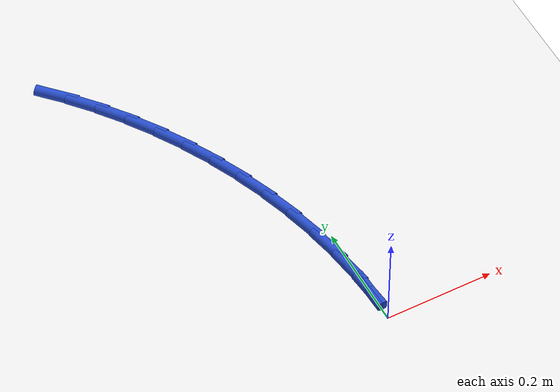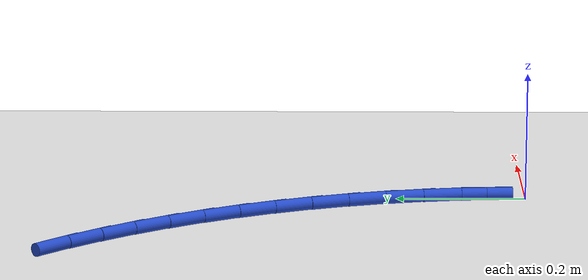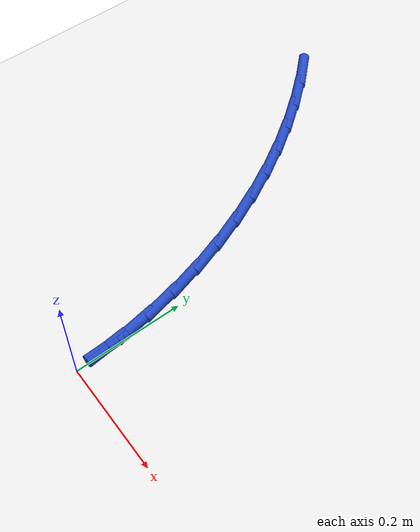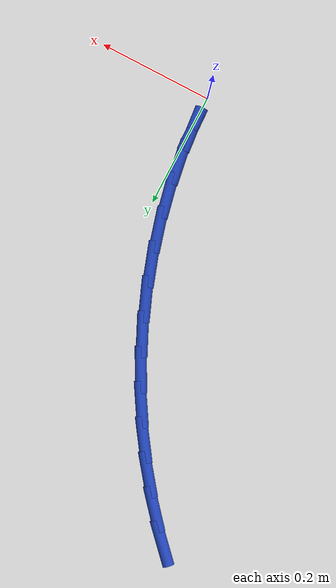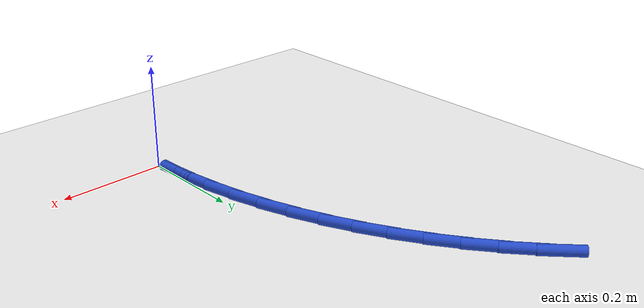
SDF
<sdf version="1.6">
 <world name="default">
  <model name="ground_plane">
   <static>1</static>
   <link name="link">
    <collision name="collision">
     <geometry><plane><normal>0 0 1</normal><size>100 100</size></plane></geometry>
     <surface><friction><ode><mu>100</mu><mu2>50</mu2></ode></friction></surface>
    </collision>
    <visual name="visual">
     <cast_shadows>0</cast_shadows>
     <geometry><plane><normal>0 0 1</normal><size>100 100</size></plane></geometry>
     <material>
      <script><uri>file://media/materials/scripts/gazebo.material</uri><name>Gazebo/WhiteGlow</name></script>
     </material>
    </visual>
   </link>
  </model>
  <model name="line">
   <link name="link_1">
    <pose>-0.0022821154465785297 0.059966418121072625 0.01 0 1.57 -1.47174494743459</pose>
    <collision name="collision">
     <geometry><cylinder><radius>0.01</radius><length>0.08</length></cylinder></geometry>
    </collision>
    <visual name="visual">
     <material>
      <script><name>Gazebo/Blue</name><uri>file://media/materials/scripts/gazebo.material</uri></script>
     </material>
     <geometry><cylinder><radius>0.01</radius><length>0.08</length></cylinder></geometry>
    </visual>
   </link>
   <link name="link_2">
    <pose>-0.00821017917963408 0.11961893368376822 0.01 0 1.57 -1.4122493064785886</pose>
    <collision name="collision">
     <geometry><cylinder><radius>0.01</radius><length>0.08</length></cylinder></geometry>
    </collision>
    <visual name="visual">
     <material>
      <script><name>Gazebo/Blue</name><uri>file://media/materials/scripts/gazebo.material</uri></script>
     </material>
     <geometry><cylinder><radius>0.01</radius><length>0.08</length></cylinder></geometry>
    </visual>
   </link>
   <link name="link_3">
    <pose>-0.017667669455828757 0.1787692875122984 0.01 0 1.57 -1.3540957587988849</pose>
    <collision name="collision">
     <geometry><cylinder><radius>0.01</radius><length>0.08</length></cylinder></geometry>
    </collision>
    <visual name="visual">
     <material>
      <script><name>Gazebo/Blue</name><uri>file://media/materials/scripts/gazebo.material</uri></script>
     </material>
     <geometry><cylinder><radius>0.01</radius><length>0.08</length></cylinder></geometry>
    </visual>
   </link>
   <link name="link_4">
    <pose>-0.03053806453182468 0.23722922043087485 0.01 0 1.57 -1.2970787397184924</pose>
    <collision name="collision">
     <geometry><cylinder><radius>0.01</radius><length>0.08</length></cylinder></geometry>
    </collision>
    <visual name="visual">
     <material>
      <script><name>Gazebo/Blue</name><uri>file://media/materials/scripts/gazebo.material</uri></script>
     </material>
     <geometry><cylinder><radius>0.01</radius><length>0.08</length></cylinder></geometry>
    </visual>
   </link>
   <link name="link_5">
    <pose>-0.04670484266428398 0.2948104732637089 0.01 0 1.57 -1.2409692464609967</pose>
    <collision name="collision">
     <geometry><cylinder><radius>0.01</radius><length>0.08</length></cylinder></geometry>
    </collision>
    <visual name="visual">
     <material>
      <script><name>Gazebo/Blue</name><uri>file://media/materials/scripts/gazebo.material</uri></script>
     </material>
     <geometry><cylinder><radius>0.01</radius><length>0.08</length></cylinder></geometry>
    </visual>
   </link>
   <link name="link_6">
    <pose>-0.06605148210986873 0.35132478683501217 0.01 0 1.57 -1.185520161140541</pose>
    <collision name="collision">
     <geometry><cylinder><radius>0.01</radius><length>0.08</length></cylinder></geometry>
    </collision>
    <visual name="visual">
     <material>
      <script><name>Gazebo/Blue</name><uri>file://media/materials/scripts/gazebo.material</uri></script>
     </material>
     <geometry><cylinder><radius>0.01</radius><length>0.08</length></cylinder></geometry>
    </visual>
   </link>
   <link name="link_7">
    <pose>-0.08846146112524109 0.4065839019689962 0.01 0 1.57 -1.1304703618845637</pose>
    <collision name="collision">
     <geometry><cylinder><radius>0.01</radius><length>0.08</length></cylinder></geometry>
    </collision>
    <visual name="visual">
     <material>
      <script><name>Gazebo/Blue</name><uri>file://media/materials/scripts/gazebo.material</uri></script>
     </material>
     <geometry><cylinder><radius>0.01</radius><length>0.08</length></cylinder></geometry>
    </visual>
   </link>
   <link name="link_8">
    <pose>-0.11381825796706319 0.4603995594898725 0.01 0 1.57 -1.07554786515156</pose>
    <collision name="collision">
     <geometry><cylinder><radius>0.01</radius><length>0.08</length></cylinder></geometry>
    </collision>
    <visual name="visual">
     <material>
      <script><name>Gazebo/Blue</name><uri>file://media/materials/scripts/gazebo.material</uri></script>
     </material>
     <geometry><cylinder><radius>0.01</radius><length>0.08</length></cylinder></geometry>
    </visual>
   </link>
   <link name="link_9">
    <pose>-0.14200535089199706 0.5125835002218524 0.01 0 1.57 -1.0204937475495552</pose>
    <collision name="collision">
     <geometry><cylinder><radius>0.01</radius><length>0.08</length></cylinder></geometry>
    </collision>
    <visual name="visual">
     <material>
      <script><name>Gazebo/Blue</name><uri>file://media/materials/scripts/gazebo.material</uri></script>
     </material>
     <geometry><cylinder><radius>0.01</radius><length>0.08</length></cylinder></geometry>
    </visual>
   </link>
   <link name="link_10">
    <pose>-0.17290643985553295 0.5629502493697105 0.01 0 1.57 -0.9657391119610943</pose>
    <collision name="collision">
     <geometry><cylinder><radius>0.01</radius><length>0.08</length></cylinder></geometry>
    </collision>
    <visual name="visual">
     <material>
      <script><name>Gazebo/Blue</name><uri>file://media/materials/scripts/gazebo.material</uri></script>
     </material>
     <geometry><cylinder><radius>0.01</radius><length>0.08</length></cylinder></geometry>
    </visual>
   </link>
   <link name="link_11">
    <pose>-0.2064118370935473 0.6113973777056889 0.01 0 1.57 -0.9120993402383045</pose>
    <collision name="collision">
     <geometry><cylinder><radius>0.01</radius><length>0.08</length></cylinder></geometry>
    </collision>
    <visual name="visual">
     <material>
      <script><name>Gazebo/Blue</name><uri>file://media/materials/scripts/gazebo.material</uri></script>
     </material>
     <geometry><cylinder><radius>0.01</radius><length>0.08</length></cylinder></geometry>
    </visual>
   </link>
   <link name="link_12">
    <pose>-0.24241943619810527 0.6579176724765398 0.01 0 1.57 -0.859759596467872</pose>
    <collision name="collision">
     <geometry><cylinder><radius>0.01</radius><length>0.08</length></cylinder></geometry>
    </collision>
    <visual name="visual">
     <material>
      <script><name>Gazebo/Blue</name><uri>file://media/materials/scripts/gazebo.material</uri></script>
     </material>
     <geometry><cylinder><radius>0.01</radius><length>0.08</length></cylinder></geometry>
    </visual>
   </link>
   <link name="link_13">
    <pose>-0.28082754741238125 0.7025091537724201 0.01 0 1.57 -0.8088292838707706</pose>
    <collision name="collision">
     <geometry><cylinder><radius>0.01</radius><length>0.08</length></cylinder></geometry>
    </collision>
    <visual name="visual">
     <material>
      <script><name>Gazebo/Blue</name><uri>file://media/materials/scripts/gazebo.material</uri></script>
     </material>
     <geometry><cylinder><radius>0.01</radius><length>0.08</length></cylinder></geometry>
    </visual>
   </link>
   <link name="link_111">
    <pose>-0.0023117437601816587 0.05995326503008458 0.01 0 1.57 -1.5322563227310462</pose>
    <collision name="collision">
     <geometry><cylinder><radius>0.01</radius><length>0.08</length></cylinder></geometry>
    </collision>
    <visual name="visual">
     <material>
      <script><name>Gazebo/Blue</name><uri>file://media/materials/scripts/gazebo.material</uri></script>
     </material>
     <geometry><cylinder><radius>0.01</radius><length>0.08</length></cylinder></geometry>
    </visual>
   </link>
  </model>
 </world>
</sdf>
